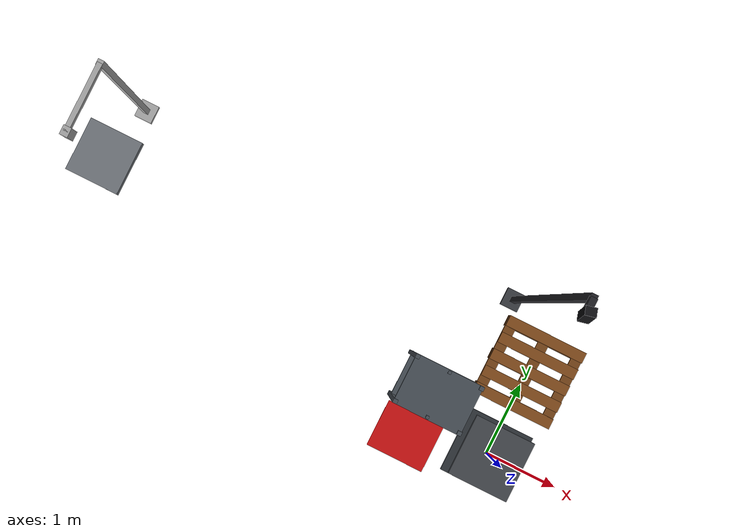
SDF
<sdf version="1.8">
 <world name="ahead_workcell_v4_2_physical_scale">
  <model name="inline_scale">
   <static>true</static>
   <link name="scale_link">
    <visual name="weighing_frame">
     <pose>-5.985 1.20 0.755 0 0 0</pose>
     <geometry><box><size>0.70 0.70 0.085</size></box></geometry>
     <material><ambient>0.25 0.26 0.28 1</ambient><diffuse>0.48 0.50 0.53 1</diffuse></material>
    </visual>
    <visual name="loadcell_base">
     <pose>-5.985 1.20 0.685 0 0 0</pose>
     <geometry><box><size>0.56 0.54 0.045</size></box></geometry>
    </visual>
   </link>
  </model>
  <model name="hdr50_pedestal">
   <static>true</static>
   <link name="pedestal_link">
    <collision name="base_plate_collision">
     <pose>0 0 0.025 0 0 0</pose>
     <geometry><box><size>0.90 0.90 0.05</size></box></geometry>
    </collision>
    <visual name="base_plate_visual">
     <pose>0 0 0.025 0 0 0</pose>
     <geometry><box><size>0.90 0.90 0.05</size></box></geometry>
     <material><ambient>0.10 0.11 0.12 1</ambient><diffuse>0.20 0.22 0.24 1</diffuse></material>
    </visual>
    <collision name="column_collision">
     <pose>0 0 0.205 0 0 0</pose>
     <geometry><box><size>0.68 0.68 0.31</size></box></geometry>
    </collision>
    <visual name="column_visual">
     <pose>0 0 0.205 0 0 0</pose>
     <geometry><box><size>0.68 0.68 0.31</size></box></geometry>
     <material><ambient>0.18 0.20 0.22 1</ambient><diffuse>0.34 0.37 0.40 1</diffuse></material>
    </visual>
    <collision name="top_plate_collision">
     <pose>0 0 0.375 0 0 0</pose>
     <geometry><box><size>0.82 0.82 0.05</size></box></geometry>
    </collision>
    <visual name="top_plate_visual">
     <pose>0 0 0.375 0 0 0</pose>
     <geometry><box><size>0.82 0.82 0.05</size></box></geometry>
     <material><ambient>0.12 0.13 0.14 1</ambient><diffuse>0.28 0.30 0.32 1</diffuse></material>
    </visual>
   </link>
  </model>
  <model name="pallet_main">
   <static>true</static>
   <pose>0 1.20 0 0 0 0</pose>
   <link name="pallet_link">
    <collision name="bottom_board_0_collision">
     <pose>0 -0.4775 0.011 0 0 0</pose>
     <geometry><box><size>1.1 0.145 0.022</size></box></geometry>
    </collision>
    <visual name="bottom_board_0_visual">
     <pose>0 -0.4775 0.011 0 0 0</pose>
     <geometry><box><size>1.1 0.145 0.022</size></box></geometry>
     <material><ambient>0.30 0.18 0.07 1</ambient><diffuse>0.48 0.28 0.11 1</diffuse></material>
    </visual>
    <collision name="bottom_board_1_collision">
     <pose>0 0 0.011 0 0 0</pose>
     <geometry><box><size>1.1 0.145 0.022</size></box></geometry>
    </collision>
    <visual name="bottom_board_1_visual">
     <pose>0 0 0.011 0 0 0</pose>
     <geometry><box><size>1.1 0.145 0.022</size></box></geometry>
     <material><ambient>0.30 0.18 0.07 1</ambient><diffuse>0.48 0.28 0.11 1</diffuse></material>
    </visual>
    <collision name="bottom_board_2_collision">
     <pose>0 0.4775 0.011 0 0 0</pose>
     <geometry><box><size>1.1 0.145 0.022</size></box></geometry>
    </collision>
    <visual name="bottom_board_2_visual">
     <pose>0 0.4775 0.011 0 0 0</pose>
     <geometry><box><size>1.1 0.145 0.022</size></box></geometry>
     <material><ambient>0.30 0.18 0.07 1</ambient><diffuse>0.48 0.28 0.11 1</diffuse></material>
    </visual>
    <collision name="block_0_0_collision">
     <pose>-0.4775 -0.4775 0.0575 0 0 0</pose>
     <geometry><box><size>0.145 0.145 0.071</size></box></geometry>
    </collision>
    <visual name="block_0_0_visual">
     <pose>-0.4775 -0.4775 0.0575 0 0 0</pose>
     <geometry><box><size>0.145 0.145 0.071</size></box></geometry>
     <material><ambient>0.28 0.16 0.06 1</ambient><diffuse>0.45 0.26 0.10 1</diffuse></material>
    </visual>
    <collision name="block_0_1_collision">
     <pose>-0.4775 0 0.0575 0 0 0</pose>
     <geometry><box><size>0.145 0.145 0.071</size></box></geometry>
    </collision>
    <visual name="block_0_1_visual">
     <pose>-0.4775 0 0.0575 0 0 0</pose>
     <geometry><box><size>0.145 0.145 0.071</size></box></geometry>
     <material><ambient>0.28 0.16 0.06 1</ambient><diffuse>0.45 0.26 0.10 1</diffuse></material>
    </visual>
    <collision name="block_0_2_collision">
     <pose>-0.4775 0.4775 0.0575 0 0 0</pose>
     <geometry><box><size>0.145 0.145 0.071</size></box></geometry>
    </collision>
    <visual name="block_0_2_visual">
     <pose>-0.4775 0.4775 0.0575 0 0 0</pose>
     <geometry><box><size>0.145 0.145 0.071</size></box></geometry>
     <material><ambient>0.28 0.16 0.06 1</ambient><diffuse>0.45 0.26 0.10 1</diffuse></material>
    </visual>
    <collision name="block_1_0_collision">
     <pose>0 -0.4775 0.0575 0 0 0</pose>
     <geometry><box><size>0.145 0.145 0.071</size></box></geometry>
    </collision>
    <visual name="block_1_0_visual">
     <pose>0 -0.4775 0.0575 0 0 0</pose>
     <geometry><box><size>0.145 0.145 0.071</size></box></geometry>
     <material><ambient>0.28 0.16 0.06 1</ambient><diffuse>0.45 0.26 0.10 1</diffuse></material>
    </visual>
    <collision name="block_1_1_collision">
     <pose>0 0 0.0575 0 0 0</pose>
     <geometry><box><size>0.145 0.145 0.071</size></box></geometry>
    </collision>
    <visual name="block_1_1_visual">
     <pose>0 0 0.0575 0 0 0</pose>
     <geometry><box><size>0.145 0.145 0.071</size></box></geometry>
     <material><ambient>0.28 0.16 0.06 1</ambient><diffuse>0.45 0.26 0.10 1</diffuse></material>
    </visual>
    <collision name="block_1_2_collision">
     <pose>0 0.4775 0.0575 0 0 0</pose>
     <geometry><box><size>0.145 0.145 0.071</size></box></geometry>
    </collision>
    <visual name="block_1_2_visual">
     <pose>0 0.4775 0.0575 0 0 0</pose>
     <geometry><box><size>0.145 0.145 0.071</size></box></geometry>
     <material><ambient>0.28 0.16 0.06 1</ambient><diffuse>0.45 0.26 0.10 1</diffuse></material>
    </visual>
    <collision name="block_2_0_collision">
     <pose>0.4775 -0.4775 0.0575 0 0 0</pose>
     <geometry><box><size>0.145 0.145 0.071</size></box></geometry>
    </collision>
    <visual name="block_2_0_visual">
     <pose>0.4775 -0.4775 0.0575 0 0 0</pose>
     <geometry><box><size>0.145 0.145 0.071</size></box></geometry>
     <material><ambient>0.28 0.16 0.06 1</ambient><diffuse>0.45 0.26 0.10 1</diffuse></material>
    </visual>
    <collision name="block_2_1_collision">
     <pose>0.4775 0 0.0575 0 0 0</pose>
     <geometry><box><size>0.145 0.145 0.071</size></box></geometry>
    </collision>
    <visual name="block_2_1_visual">
     <pose>0.4775 0 0.0575 0 0 0</pose>
     <geometry><box><size>0.145 0.145 0.071</size></box></geometry>
     <material><ambient>0.28 0.16 0.06 1</ambient><diffuse>0.45 0.26 0.10 1</diffuse></material>
    </visual>
    <collision name="block_2_2_collision">
     <pose>0.4775 0.4775 0.0575 0 0 0</pose>
     <geometry><box><size>0.145 0.145 0.071</size></box></geometry>
    </collision>
    <visual name="block_2_2_visual">
     <pose>0.4775 0.4775 0.0575 0 0 0</pose>
     <geometry><box><size>0.145 0.145 0.071</size></box></geometry>
     <material><ambient>0.28 0.16 0.06 1</ambient><diffuse>0.45 0.26 0.10 1</diffuse></material>
    </visual>
    <collision name="cross_board_0_collision">
     <pose>-0.4775 0 0.104 0 0 0</pose>
     <geometry><box><size>0.145 1.1 0.022</size></box></geometry>
    </collision>
    <visual name="cross_board_0_visual">
     <pose>-0.4775 0 0.104 0 0 0</pose>
     <geometry><box><size>0.145 1.1 0.022</size></box></geometry>
     <material><ambient>0.31 0.18 0.07 1</ambient><diffuse>0.50 0.29 0.11 1</diffuse></material>
    </visual>
    <collision name="cross_board_1_collision">
     <pose>0 0 0.104 0 0 0</pose>
     <geometry><box><size>0.145 1.1 0.022</size></box></geometry>
    </collision>
    <visual name="cross_board_1_visual">
     <pose>0 0 0.104 0 0 0</pose>
     <geometry><box><size>0.145 1.1 0.022</size></box></geometry>
     <material><ambient>0.31 0.18 0.07 1</ambient><diffuse>0.50 0.29 0.11 1</diffuse></material>
    </visual>
    <collision name="cross_board_2_collision">
     <pose>0.4775 0 0.104 0 0 0</pose>
     <geometry><box><size>0.145 1.1 0.022</size></box></geometry>
    </collision>
    <visual name="cross_board_2_visual">
     <pose>0.4775 0 0.104 0 0 0</pose>
     <geometry><box><size>0.145 1.1 0.022</size></box></geometry>
     <material><ambient>0.31 0.18 0.07 1</ambient><diffuse>0.50 0.29 0.11 1</diffuse></material>
    </visual>
    <collision name="top_board_0_collision">
     <pose>0 -0.4785 0.1325 0 0 0</pose>
     <geometry><box><size>1.1 0.143 0.035</size></box></geometry>
    </collision>
    <visual name="top_board_0_visual">
     <pose>0 -0.4785 0.1325 0 0 0</pose>
     <geometry><box><size>1.1 0.143 0.035</size></box></geometry>
     <material><ambient>0.34 0.20 0.08 1</ambient><diffuse>0.55 0.32 0.12 1</diffuse></material>
    </visual>
    <collision name="top_board_1_collision">
     <pose>0 -0.23925 0.1325 0 0 0</pose>
     <geometry><box><size>1.1 0.143 0.035</size></box></geometry>
    </collision>
    <visual name="top_board_1_visual">
     <pose>0 -0.23925 0.1325 0 0 0</pose>
     <geometry><box><size>1.1 0.143 0.035</size></box></geometry>
     <material><ambient>0.34 0.20 0.08 1</ambient><diffuse>0.55 0.32 0.12 1</diffuse></material>
    </visual>
    <collision name="top_board_2_collision">
     <pose>0 0 0.1325 0 0 0</pose>
     <geometry><box><size>1.1 0.143 0.035</size></box></geometry>
    </collision>
    <visual name="top_board_2_visual">
     <pose>0 0 0.1325 0 0 0</pose>
     <geometry><box><size>1.1 0.143 0.035</size></box></geometry>
     <material><ambient>0.34 0.20 0.08 1</ambient><diffuse>0.55 0.32 0.12 1</diffuse></material>
    </visual>
    <collision name="top_board_3_collision">
     <pose>0 0.23925 0.1325 0 0 0</pose>
     <geometry><box><size>1.1 0.143 0.035</size></box></geometry>
    </collision>
    <visual name="top_board_3_visual">
     <pose>0 0.23925 0.1325 0 0 0</pose>
     <geometry><box><size>1.1 0.143 0.035</size></box></geometry>
     <material><ambient>0.34 0.20 0.08 1</ambient><diffuse>0.55 0.32 0.12 1</diffuse></material>
    </visual>
    <collision name="top_board_4_collision">
     <pose>0 0.4785 0.1325 0 0 0</pose>
     <geometry><box><size>1.1 0.143 0.035</size></box></geometry>
    </collision>
    <visual name="top_board_4_visual">
     <pose>0 0.4785 0.1325 0 0 0</pose>
     <geometry><box><size>1.1 0.143 0.035</size></box></geometry>
     <material><ambient>0.34 0.20 0.08 1</ambient><diffuse>0.55 0.32 0.12 1</diffuse></material>
    </visual>
   </link>
  </model>
  <model name="buffer_rack">
   <static>true</static>
   <pose>-1.05 0.44 0 0 0 0</pose>
   <link name="rack_link">
    <collision name="post_fl_collision">
     <pose>-0.43 -0.300 0.485 0 0 0</pose>
     <geometry><box><size>0.055 0.055 0.97</size></box></geometry>
    </collision>
    <visual name="post_fl_visual">
     <pose>-0.43 -0.300 0.485 0 0 0</pose>
     <geometry><box><size>0.055 0.055 0.97</size></box></geometry>
     <material><ambient>0.15 0.17 0.19 1</ambient><diffuse>0.30 0.33 0.36 1</diffuse></material>
    </visual>
    <collision name="post_fr_collision">
     <pose>0.43 -0.300 0.485 0 0 0</pose>
     <geometry><box><size>0.055 0.055 0.97</size></box></geometry>
    </collision>
    <visual name="post_fr_visual">
     <pose>0.43 -0.300 0.485 0 0 0</pose>
     <geometry><box><size>0.055 0.055 0.97</size></box></geometry>
     <material><ambient>0.15 0.17 0.19 1</ambient><diffuse>0.30 0.33 0.36 1</diffuse></material>
    </visual>
    <collision name="post_bl_collision">
     <pose>-0.43 0.300 0.485 0 0 0</pose>
     <geometry><box><size>0.055 0.055 0.97</size></box></geometry>
    </collision>
    <visual name="post_bl_visual">
     <pose>-0.43 0.300 0.485 0 0 0</pose>
     <geometry><box><size>0.055 0.055 0.97</size></box></geometry>
     <material><ambient>0.15 0.17 0.19 1</ambient><diffuse>0.30 0.33 0.36 1</diffuse></material>
    </visual>
    <collision name="post_br_collision">
     <pose>0.43 0.300 0.485 0 0 0</pose>
     <geometry><box><size>0.055 0.055 0.97</size></box></geometry>
    </collision>
    <visual name="post_br_visual">
     <pose>0.43 0.300 0.485 0 0 0</pose>
     <geometry><box><size>0.055 0.055 0.97</size></box></geometry>
     <material><ambient>0.15 0.17 0.19 1</ambient><diffuse>0.30 0.33 0.36 1</diffuse></material>
    </visual>
    <collision name="divider_front_collision">
     <pose>0 -0.300 0.485 0 0 0</pose>
     <geometry><box><size>0.04 0.04 0.97</size></box></geometry>
    </collision>
    <visual name="divider_front_visual">
     <pose>0 -0.300 0.485 0 0 0</pose>
     <geometry><box><size>0.04 0.04 0.97</size></box></geometry>
     <material><ambient>0.15 0.17 0.19 1</ambient><diffuse>0.30 0.33 0.36 1</diffuse></material>
    </visual>
    <collision name="divider_back_collision">
     <pose>0 0.300 0.485 0 0 0</pose>
     <geometry><box><size>0.04 0.04 0.97</size></box></geometry>
    </collision>
    <visual name="divider_back_visual">
     <pose>0 0.300 0.485 0 0 0</pose>
     <geometry><box><size>0.04 0.04 0.97</size></box></geometry>
     <material><ambient>0.15 0.17 0.19 1</ambient><diffuse>0.30 0.33 0.36 1</diffuse></material>
    </visual>
    <collision name="shelf_0_collision">
     <pose>0 0 0.34 0 0 0</pose>
     <geometry><box><size>0.90 0.66 0.045</size></box></geometry>
    </collision>
    <visual name="shelf_0_visual">
     <pose>0 0 0.34 0 0 0</pose>
     <geometry><box><size>0.90 0.66 0.045</size></box></geometry>
     <material><ambient>0.15 0.17 0.19 1</ambient><diffuse>0.30 0.33 0.36 1</diffuse></material>
    </visual>
    <collision name="shelf_1_collision">
     <pose>0 0 0.92 0 0 0</pose>
     <geometry><box><size>0.90 0.66 0.045</size></box></geometry>
    </collision>
    <visual name="shelf_1_visual">
     <pose>0 0 0.92 0 0 0</pose>
     <geometry><box><size>0.90 0.66 0.045</size></box></geometry>
     <material><ambient>0.15 0.17 0.19 1</ambient><diffuse>0.30 0.33 0.36 1</diffuse></material>
    </visual>
   </link>
  </model>
  <model name="ng_zone">
   <static>true</static>
   <link name="ng_zone_link">
    <visual name="ng_area">
     <pose>-1.050 -0.275 0.003 0 0 0</pose>
     <geometry><box><size>0.800 0.650 0.004</size></box></geometry>
     <material><ambient>0.60 0.05 0.05 1</ambient><diffuse>0.85 0.08 0.08 1</diffuse></material>
    </visual>
   </link>
  </model>
  <model name="camera_scale_top">
   <static>true</static>
   <link name="camera_scale_link">
    <collision name="pole_base_collision">
     <pose>-5.985 2.00 0.025 0 0 0</pose>
     <geometry><box><size>0.24 0.24 0.05</size></box></geometry>
    </collision>
    <visual name="pole_base">
     <pose>-5.985 2.00 0.025 0 0 0</pose>
     <geometry><box><size>0.24 0.24 0.05</size></box></geometry>
    </visual>
    <collision name="pole_collision">
     <pose>-5.985 2.00 1.15 0 0 0</pose>
     <geometry><box><size>0.07 0.07 2.30</size></box></geometry>
    </collision>
    <visual name="pole">
     <pose>-5.985 2.00 1.15 0 0 0</pose>
     <geometry><box><size>0.07 0.07 2.30</size></box></geometry>
    </visual>
    <visual name="arm">
     <pose>-5.985 1.60 2.27 0 0 0</pose>
     <geometry><box><size>0.06 0.80 0.06</size></box></geometry>
    </visual>
    <visual name="camera_housing">
     <pose>-5.985 1.20 2.20 0 1.5708 0</pose>
     <geometry><box><size>0.20 0.11 0.095</size></box></geometry>
    </visual>
    <sensor name="scale_top_camera" type="camera">
     <pose>-5.985 1.20 2.20 0 1.5708 0</pose>
     <always_on>true</always_on>
     <update_rate>5</update_rate>
     <topic>/pac/scale_camera/image</topic>
     <camera>
      <horizontal_fov>1.00</horizontal_fov>
      <image><width>1280</width><height>960</height><format>R8G8B8</format></image>
      <clip><near>0.10</near><far>6.0</far></clip>
     </camera>
    </sensor>
   </link>
  </model>
  <model name="camera_1_cctv_base">
   <static>true</static>
   <link name="camera_1_link">
    <collision name="pole_base_collision">
     <pose>-0.6 1.95 0.025 0 0 0</pose>
     <geometry><box><size>0.24 0.24 0.05</size></box></geometry>
    </collision>
    <visual name="pole_base">
     <pose>-0.6 1.95 0.025 0 0 0</pose>
     <geometry><box><size>0.24 0.24 0.05</size></box></geometry>
     <material><ambient>0.12 0.12 0.13 1</ambient><diffuse>0.25 0.26 0.28 1</diffuse></material>
    </visual>
    <collision name="camera_pole_collision">
     <pose>-0.6 1.95 1.770 0 0 0</pose>
     <geometry><box><size>0.07 0.07 3.54</size></box></geometry>
    </collision>
    <visual name="camera_pole">
     <pose>-0.6 1.95 1.770 0 0 0</pose>
     <geometry><box><size>0.07 0.07 3.54</size></box></geometry>
     <material><ambient>0.07 0.07 0.08 1</ambient><diffuse>0.15 0.15 0.17 1</diffuse></material>
    </visual>
    <visual name="camera_bracket">
     <pose>-0.60 1.865 3.54 0 0 0</pose>
     <geometry><box><size>0.07 0.17 0.07</size></box></geometry>
     <material><ambient>0.07 0.07 0.08 1</ambient><diffuse>0.15 0.15 0.17 1</diffuse></material>
    </visual>
    <visual name="camera_housing">
     <pose>-0.6 1.78 3.6 0 1.265364 -1.352630</pose>
     <geometry><box><size>0.20 0.11 0.095</size></box></geometry>
     <material><ambient>0.025 0.025 0.03 1</ambient><diffuse>0.07 0.07 0.08 1</diffuse></material>
    </visual>
    <sensor name="cctv_camera_1" type="camera">
     <pose>-0.6 1.78 3.6 0 1.265364 -1.352630</pose>
     <always_on>true</always_on>
     <update_rate>5</update_rate>
     <topic>/pac/top_camera/image</topic>
     <camera>
      <horizontal_fov>1.60</horizontal_fov>
      <image><width>1920</width><height>1080</height><format>R8G8B8</format></image>
      <clip><near>0.10</near><far>8.0</far></clip>
     </camera>
    </sensor>
   </link>
  </model>
 </world>
</sdf>
